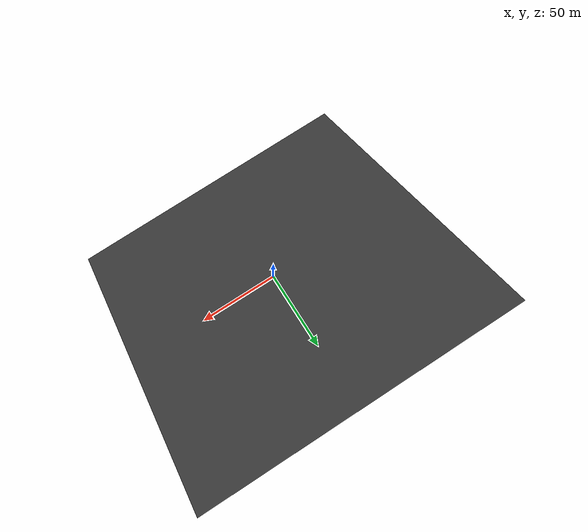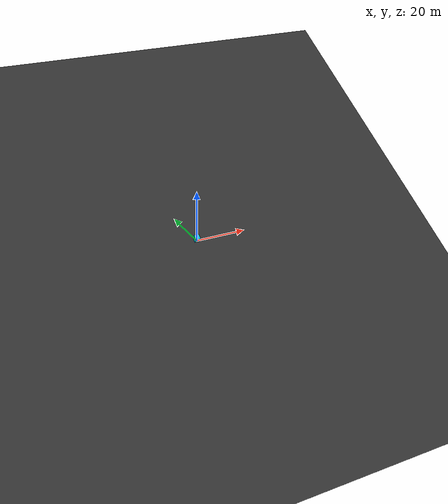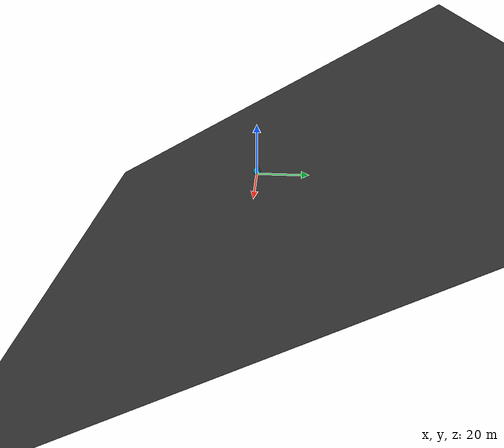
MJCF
<!--
  Demonstration for keeping a ball squashed between two other objects
-->
<mujoco model="friction">
    <compiler inertiafromgeom="true"/>
    <option gravity = "0 0 -9.8" timestep="0.0002" solver='PGS' tolerance="1e-15" iterations="100" collision='predefined' integrator='RK4'/>
    <default>
        <geom rgba = " 0.2 0.2 0.2 1" condim="3" friction= "1 1 0.1"/>
        <site rgba="0 0 0 0"/>
        <position kp="1" ctrllimited = "true" ctrlrange="0 1.57"/>
    </default>

    <asset>
    <texture name="sky_tex"     type="skybox"   builtin="flat" width="100" height="100" rgb1="0.97647 0.96862745 0.96862745"/>
        <texture name="floor_tex" type="2d" builtin="checker" rgb1="0.8588235 .8862745 .9372549" rgb2=".0666666 .17647 .30588" width="20" height="20" />
        <material name='floor_mat'  texture="floor_tex"  shininess="0.8" texrepeat="5 5" specular="0.7"  reflectance="0.5" />
    </asset>

    <worldbody>
        <light name="light3" directional="true" pos="1 -1 3" />
        <geom name='floor' pos='0 0 0' size='100 100 .125' type='plane' material='floor_mat' condim='3' conaffinity='15' euler='30 0 0'/>
        <body name="box1" pos = "0 0 1.18">
            <inertial mass='1' pos='0 0 0' fullinertia='0.1 0.1 0.1 0 0 0'/>
            <geom name="box1" type = "box" size = "1 1 1"  condim="3" pos = "0 0 -0.021" rgba = "0 0.70588 0.8470588 1"  euler = "30 0 0"/>
            <joint type="free" limited="false" damping="0"/>
            <site name="object_sensor" type="box" size = "0.02 0.02 0.005" pos = "0 0 -0.015"/>
        </body>

    </worldbody>

    <contact>
        <pair name="test" geom1="box1" geom2="floor" condim="3" friction = "1 1 0.1" solref="0.002 0.1"/>
    </contact>

    <sensor>
        <touch name = "box_sensor" site = "object_sensor"/>
    </sensor>

</mujoco>
